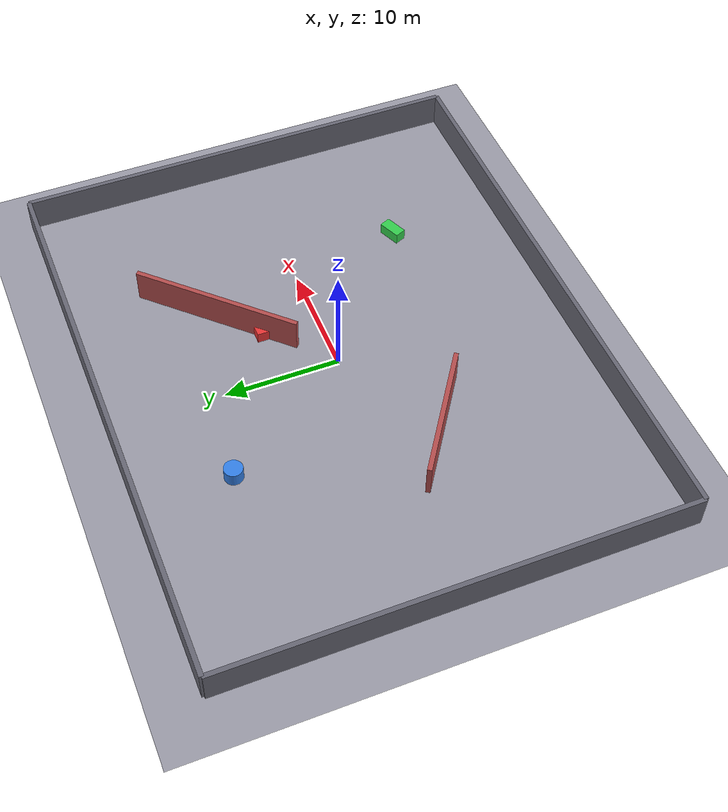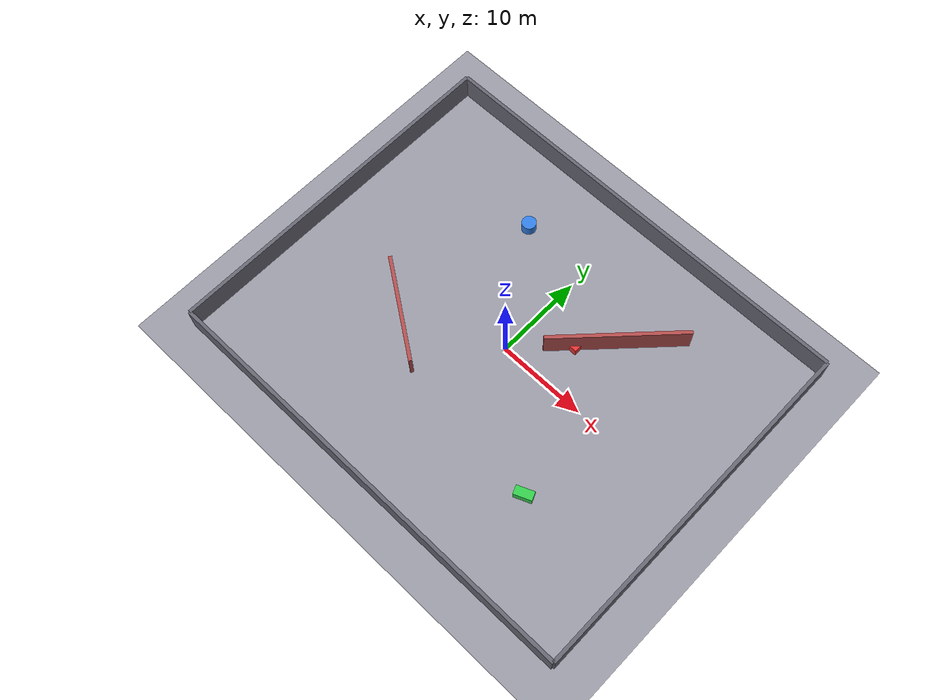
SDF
<?xml version="1.0"?>
<sdf version="1.9">
  <world name="lidar_test_arena">

    <!-- Core systems -->
    <plugin filename="gz-sim-physics-system" name="gz::sim::systems::Physics"/>

    <plugin filename="gz-sim-sensors-system" name="gz::sim::systems::Sensors">
      <render_engine>ogre2</render_engine>
    </plugin>

    <plugin filename="gz-sim-scene-broadcaster-system" name="gz::sim::systems::SceneBroadcaster"/>
    <plugin filename="gz-sim-user-commands-system" name="gz::sim::systems::UserCommands"/>

    <physics name="physics" type="ignored">
      <max_step_size>0.001</max_step_size>
      <real_time_factor>1.0</real_time_factor>
    </physics>

    <light type="directional" name="sun">
      <cast_shadows>true</cast_shadows>
      <pose>0 0 15 0 0 0</pose>
      <diffuse>0.9 0.9 0.9 1</diffuse>
      <specular>0.4 0.4 0.4 1</specular>
      <direction>-0.4 0.2 -0.9</direction>
    </light>

    <model name="ground_plane">
      <static>true</static>
      <link name="link">
        <collision name="collision">
          <geometry>
            <plane>
              <normal>0 0 1</normal>
              <size>100 100</size>
            </plane>
          </geometry>
        </collision>
        <visual name="visual">
          <geometry>
            <plane>
              <normal>0 0 1</normal>
              <size>100 100</size>
            </plane>
          </geometry>
          <material>
            <ambient>0.6 0.6 0.65 1</ambient>
            <diffuse>0.6 0.6 0.65 1</diffuse>
            <specular>0.1 0.1 0.1 1</specular>
          </material>
        </visual>
      </link>
    </model>

    <!-- Outer boundary walls -->
    <model name="wall_north">
      <static>true</static>
      <pose>0 20 1.5 0 0 0</pose>
      <link name="link">
        <collision name="collision"><geometry><box><size>50 0.4 3</size></box></geometry></collision>
        <visual name="visual"><geometry><box><size>50 0.4 3</size></box></geometry><material><diffuse>0.4 0.4 0.45 1</diffuse></material></visual>
      </link>
    </model>

    <model name="wall_south">
      <static>true</static>
      <pose>0 -20 1.5 0 0 0</pose>
      <link name="link">
        <collision name="collision"><geometry><box><size>50 0.4 3</size></box></geometry></collision>
        <visual name="visual"><geometry><box><size>50 0.4 3</size></box></geometry><material><diffuse>0.4 0.4 0.45 1</diffuse></material></visual>
      </link>
    </model>

    <model name="wall_east">
      <static>true</static>
      <pose>25 0 1.5 0 0 1.570796</pose>
      <link name="link">
        <collision name="collision"><geometry><box><size>40 0.4 3</size></box></geometry></collision>
        <visual name="visual"><geometry><box><size>40 0.4 3</size></box></geometry><material><diffuse>0.4 0.4 0.45 1</diffuse></material></visual>
      </link>
    </model>

    <model name="wall_west">
      <static>true</static>
      <pose>-25 0 1.5 0 0 1.570796</pose>
      <link name="link">
        <collision name="collision"><geometry><box><size>40 0.4 3</size></box></geometry></collision>
        <visual name="visual"><geometry><box><size>40 0.4 3</size></box></geometry><material><diffuse>0.4 0.4 0.45 1</diffuse></material></visual>
      </link>
    </model>

    <!-- Internal maze walls -->
    <model name="maze_wall_1">
      <static>true</static>
      <pose>8 8 1.5 0 0 0.8</pose>
      <link name="link">
        <collision name="collision"><geometry><box><size>15 0.4 3</size></box></geometry></collision>
        <visual name="visual"><geometry><box><size>15 0.4 3</size></box></geometry><material><diffuse>0.7 0.3 0.3 1</diffuse></material></visual>
      </link>
    </model>

    <model name="maze_wall_2">
      <static>true</static>
      <pose>-10 -5 1.5 0 0 -0.6</pose>
      <link name="link">
        <collision name="collision"><geometry><box><size>12 0.4 3</size></box></geometry></collision>
        <visual name="visual"><geometry><box><size>12 0.4 3</size></box></geometry><material><diffuse>0.7 0.3 0.3 1</diffuse></material></visual>
      </link>
    </model>

    <!-- Test objects -->
    <model name="red_box">
      <static>true</static>
      <pose>5 5 0.5 0 0 0</pose>
      <link name="link">
        <collision name="collision"><geometry><box><size>1.2 1.2 1</size></box></geometry></collision>
        <visual name="visual"><geometry><box><size>1.2 1.2 1</size></box></geometry><material><diffuse>0.9 0.2 0.2 1</diffuse></material></visual>
      </link>
    </model>

    <model name="blue_cylinder">
      <static>true</static>
      <pose>-8 12 0.6 0 0 0</pose>
      <link name="link">
        <collision name="collision"><geometry><cylinder><radius>0.8</radius><length>1.2</length></cylinder></geometry></collision>
        <visual name="visual"><geometry><cylinder><radius>0.8</radius><length>1.2</length></cylinder></geometry><material><diffuse>0.2 0.5 0.9 1</diffuse></material></visual>
      </link>
    </model>

    <model name="green_box">
      <static>true</static>
      <pose>12 -10 0.5 0 0 0.4</pose>
      <link name="link">
        <collision name="collision"><geometry><box><size>2 1 1</size></box></geometry></collision>
        <visual name="visual"><geometry><box><size>2 1 1</size></box></geometry><material><diffuse>0.2 0.8 0.3 1</diffuse></material></visual>
      </link>
    </model>

  </world>
</sdf>
